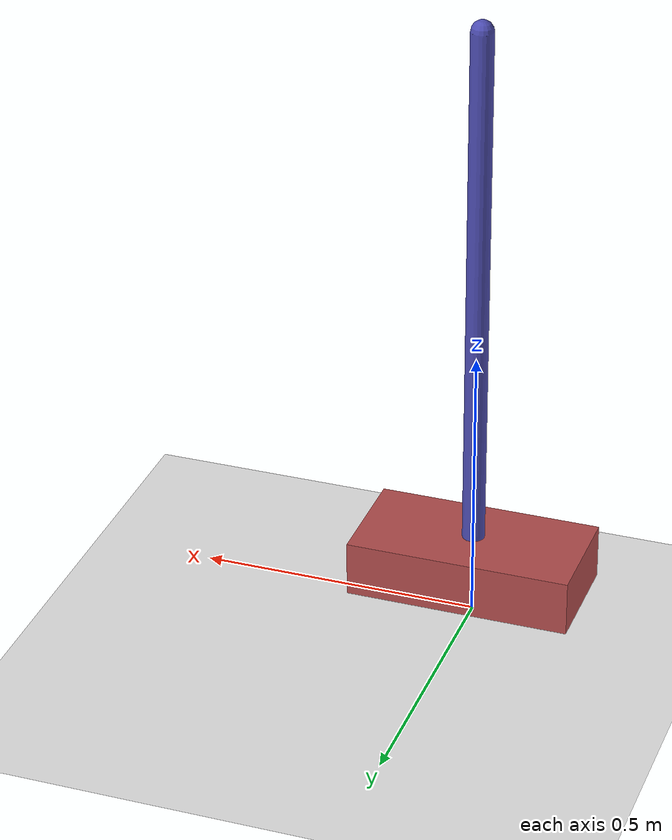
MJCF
<mujoco model="cartpole">
  <option timestep="0.01" integrator="RK4" gravity="0 0 -9.81"/>

  <default>
    <joint damping="0.05" armature="0.01"/>
    <geom condim="3" friction="0.8 0.1 0.1"/>
  </default>

  <worldbody>
    <light pos="0 0 3" dir="0 0 -1"/>
    <geom name="floor" type="plane" size="10 10 0.1" rgba=".9 .9 .9 1"/>

    <!-- Cart -->
    <body name="cart" pos="0 0 0.1">
      <joint name="slider" type="slide" axis="1 0 0" limited="true" range="-5 5" damping="0.1"/>
      <geom type="box" size="0.2 0.1 0.05" rgba="0.7 0.3 0.3 1" mass="1"/>

      <!-- Pole -->
      <body name="pole" pos="0 0 0">
        <joint name="hinge" type="hinge" axis="0 1 0" pos="0 0 0" damping="0.01"/>
        <geom type="capsule" fromto="0 0 0 0 0 1" size="0.02" rgba="0.3 0.3 0.7 1" mass="0.1"/>
      </body>
    </body>
  </worldbody>

  <actuator>
    <motor name="slide_motor" joint="slider" gear="10" ctrlrange="-10 10"/>
  </actuator>
</mujoco>
